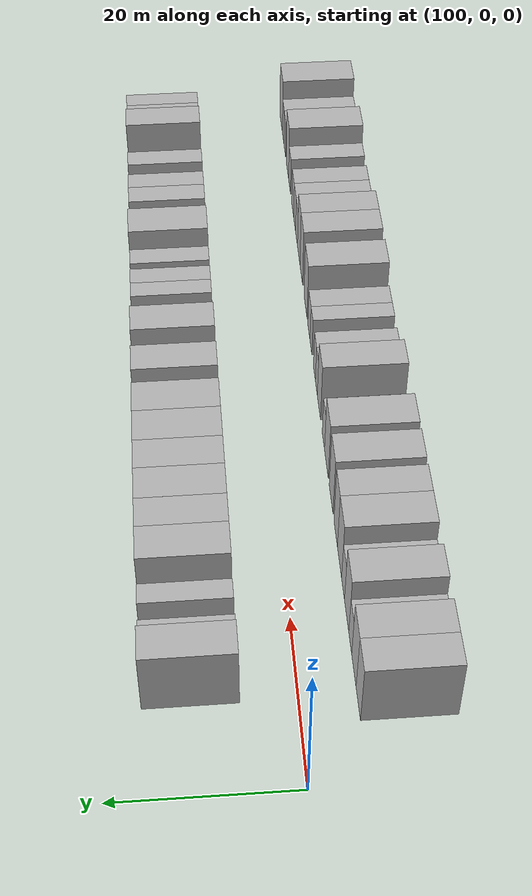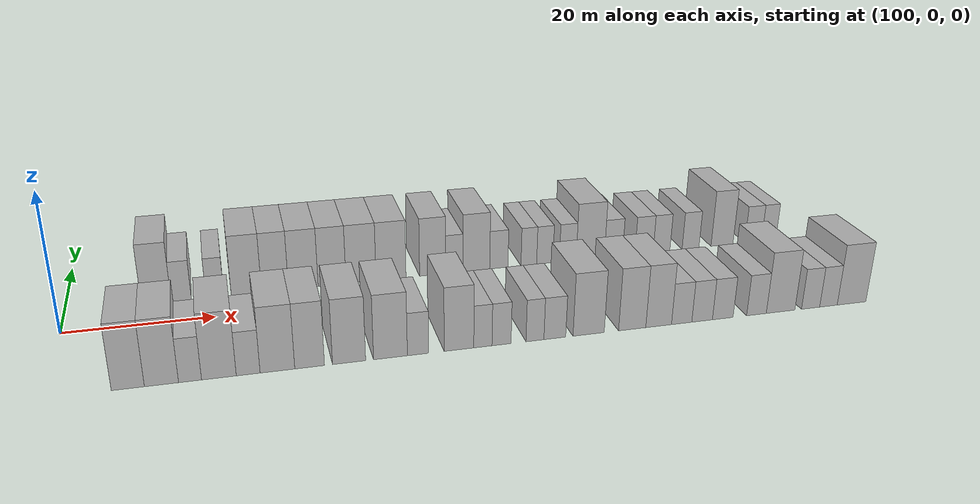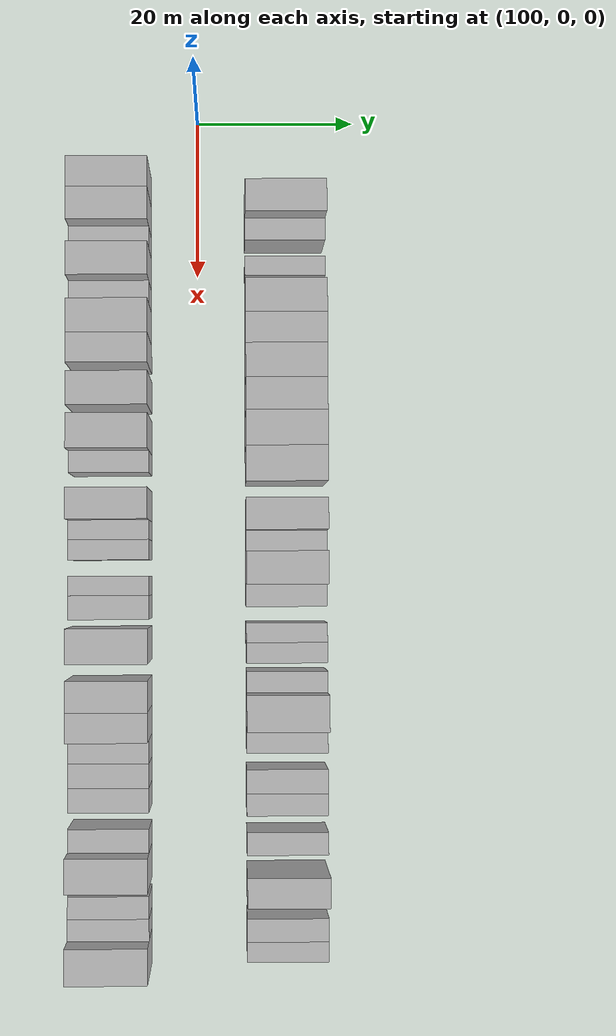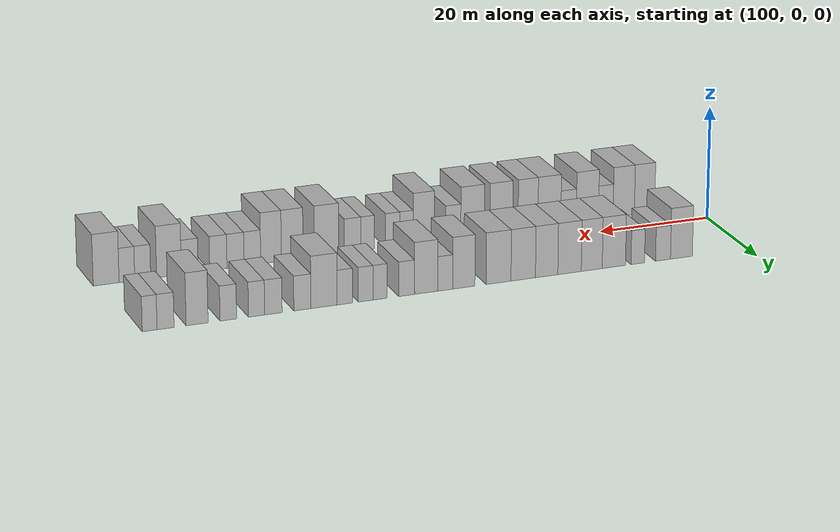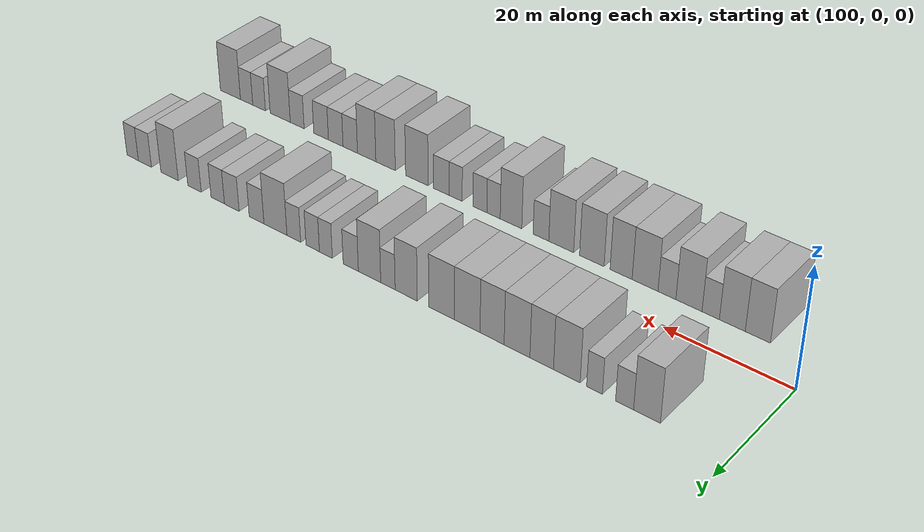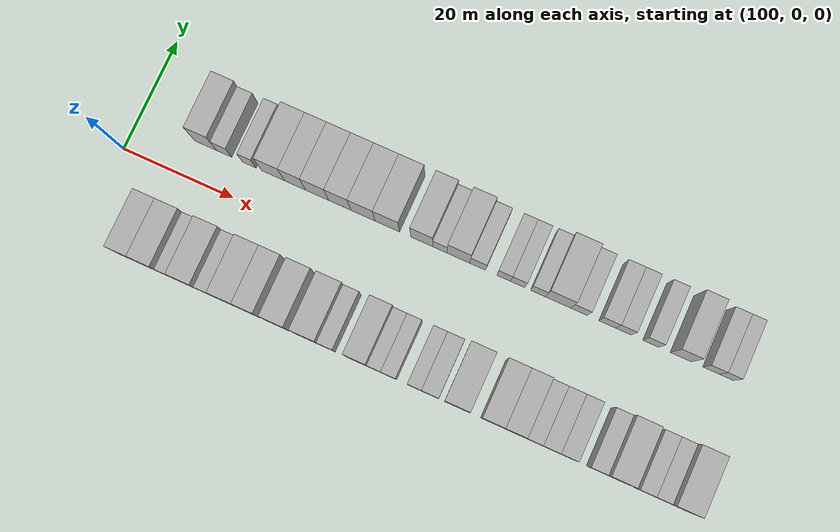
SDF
<sdf version="1.6">
 <world name="default">
  <model name="building_27">
   <static>1</static>
   <pose>112.1227 11.0000 0 0.000000 0.000000 1.570796</pose>
   <link name="link">
    <pose>0 0 4.50 0 0 0</pose>
    <collision name="collision"><geometry><box><size>10.0000 3.9997 9.0000</size></box></geometry></collision>
    <visual name="visual">
     <cast_shadows>0</cast_shadows>
     <geometry><box><size>10.0000 3.9997 9.0000</size></box></geometry>
     <material>
      <script>
       <uri>model://HANNAS_wall/materials/scripts</uri>
       <uri>model://HANNAS_wall/materials/textures</uri>
       <name>vrc/HANNAS_wall</name>
      </script>
     </material>
    </visual>
   </link>
  </model>
  <model name="building_28">
   <static>1</static>
   <pose>115.4858 11.0000 0 0.000000 0.000000 1.570796</pose>
   <link name="link">
    <pose>0 0 3.00 0 0 0</pose>
    <collision name="collision"><geometry><box><size>10.0000 2.7263 6.0000</size></box></geometry></collision>
    <visual name="visual">
     <cast_shadows>0</cast_shadows>
     <geometry><box><size>10.0000 2.7263 6.0000</size></box></geometry>
     <material>
      <script>
       <uri>model://HANNAS_wall/materials/scripts</uri>
       <uri>model://HANNAS_wall/materials/textures</uri>
       <name>vrc/HANNAS_wall</name>
      </script>
     </material>
    </visual>
   </link>
  </model>
  <model name="building_29">
   <static>1</static>
   <pose>120.0721 11.0000 0 0.000000 0.000000 1.570796</pose>
   <link name="link">
    <pose>0 0 3.00 0 0 0</pose>
    <collision name="collision"><geometry><box><size>10.0000 2.4463 6.0000</size></box></geometry></collision>
    <visual name="visual">
     <cast_shadows>0</cast_shadows>
     <geometry><box><size>10.0000 2.4463 6.0000</size></box></geometry>
     <material>
      <script>
       <uri>model://HANNAS_wall/materials/scripts</uri>
       <uri>model://HANNAS_wall/materials/textures</uri>
       <name>vrc/HANNAS_wall</name>
      </script>
     </material>
    </visual>
   </link>
  </model>
  <model name="building_30">
   <static>1</static>
   <pose>124.3929 11.0000 0 0.000000 0.000000 1.570796</pose>
   <link name="link">
    <pose>0 0 4.50 0 0 0</pose>
    <collision name="collision"><geometry><box><size>10.0000 4.1953 9.0000</size></box></geometry></collision>
    <visual name="visual">
     <cast_shadows>0</cast_shadows>
     <geometry><box><size>10.0000 4.1953 9.0000</size></box></geometry>
     <material>
      <script>
       <uri>model://HANNAS_wall/materials/scripts</uri>
       <uri>model://HANNAS_wall/materials/textures</uri>
       <name>vrc/HANNAS_wall</name>
      </script>
     </material>
    </visual>
   </link>
  </model>
  <model name="building_31">
   <static>1</static>
   <pose>128.3770 11.0000 0 0.000000 0.000000 1.570796</pose>
   <link name="link">
    <pose>0 0 4.50 0 0 0</pose>
    <collision name="collision"><geometry><box><size>10.0000 3.7729 9.0000</size></box></geometry></collision>
    <visual name="visual">
     <cast_shadows>0</cast_shadows>
     <geometry><box><size>10.0000 3.7729 9.0000</size></box></geometry>
     <material>
      <script>
       <uri>model://HANNAS_wall/materials/scripts</uri>
       <uri>model://HANNAS_wall/materials/textures</uri>
       <name>vrc/HANNAS_wall</name>
      </script>
     </material>
    </visual>
   </link>
  </model>
  <model name="building_32">
   <static>1</static>
   <pose>132.3596 11.0000 0 0.000000 0.000000 1.570796</pose>
   <link name="link">
    <pose>0 0 4.50 0 0 0</pose>
    <collision name="collision"><geometry><box><size>10.0000 4.1923 9.0000</size></box></geometry></collision>
    <visual name="visual">
     <cast_shadows>0</cast_shadows>
     <geometry><box><size>10.0000 4.1923 9.0000</size></box></geometry>
     <material>
      <script>
       <uri>model://HANNAS_wall/materials/scripts</uri>
       <uri>model://HANNAS_wall/materials/textures</uri>
       <name>vrc/HANNAS_wall</name>
      </script>
     </material>
    </visual>
   </link>
  </model>
  <model name="building_33">
   <static>1</static>
   <pose>136.4485 11.0000 0 0.000000 0.000000 1.570796</pose>
   <link name="link">
    <pose>0 0 4.50 0 0 0</pose>
    <collision name="collision"><geometry><box><size>10.0000 3.9856 9.0000</size></box></geometry></collision>
    <visual name="visual">
     <cast_shadows>0</cast_shadows>
     <geometry><box><size>10.0000 3.9856 9.0000</size></box></geometry>
     <material>
      <script>
       <uri>model://HANNAS_wall/materials/scripts</uri>
       <uri>model://HANNAS_wall/materials/textures</uri>
       <name>vrc/HANNAS_wall</name>
      </script>
     </material>
    </visual>
   </link>
  </model>
  <model name="building_34">
   <static>1</static>
   <pose>140.6150 11.0000 0 0.000000 0.000000 1.570796</pose>
   <link name="link">
    <pose>0 0 4.50 0 0 0</pose>
    <collision name="collision"><geometry><box><size>10.0000 4.3473 9.0000</size></box></geometry></collision>
    <visual name="visual">
     <cast_shadows>0</cast_shadows>
     <geometry><box><size>10.0000 4.3473 9.0000</size></box></geometry>
     <material>
      <script>
       <uri>model://HANNAS_wall/materials/scripts</uri>
       <uri>model://HANNAS_wall/materials/textures</uri>
       <name>vrc/HANNAS_wall</name>
      </script>
     </material>
    </visual>
   </link>
  </model>
  <model name="building_35">
   <static>1</static>
   <pose>144.9745 11.0000 0 0.000000 0.000000 1.570796</pose>
   <link name="link">
    <pose>0 0 4.50 0 0 0</pose>
    <collision name="collision"><geometry><box><size>10.0000 4.3716 9.0000</size></box></geometry></collision>
    <visual name="visual">
     <cast_shadows>0</cast_shadows>
     <geometry><box><size>10.0000 4.3716 9.0000</size></box></geometry>
     <material>
      <script>
       <uri>model://HANNAS_wall/materials/scripts</uri>
       <uri>model://HANNAS_wall/materials/textures</uri>
       <name>vrc/HANNAS_wall</name>
      </script>
     </material>
    </visual>
   </link>
  </model>
  <model name="building_36">
   <static>1</static>
   <pose>151.1063 11.0000 0 0.000000 0.000000 1.570796</pose>
   <link name="link">
    <pose>0 0 4.50 0 0 0</pose>
    <collision name="collision"><geometry><box><size>10.0000 3.8922 9.0000</size></box></geometry></collision>
    <visual name="visual">
     <cast_shadows>0</cast_shadows>
     <geometry><box><size>10.0000 3.8922 9.0000</size></box></geometry>
     <material>
      <script>
       <uri>model://HANNAS_wall/materials/scripts</uri>
       <uri>model://HANNAS_wall/materials/textures</uri>
       <name>vrc/HANNAS_wall</name>
      </script>
     </material>
    </visual>
   </link>
  </model>
  <model name="building_37">
   <static>1</static>
   <pose>154.3413 11.0000 0 0.000000 0.000000 1.570796</pose>
   <link name="link">
    <pose>0 0 3.00 0 0 0</pose>
    <collision name="collision"><geometry><box><size>10.0000 2.5777 6.0000</size></box></geometry></collision>
    <visual name="visual">
     <cast_shadows>0</cast_shadows>
     <geometry><box><size>10.0000 2.5777 6.0000</size></box></geometry>
     <material>
      <script>
       <uri>model://HANNAS_wall/materials/scripts</uri>
       <uri>model://HANNAS_wall/materials/textures</uri>
       <name>vrc/HANNAS_wall</name>
      </script>
     </material>
    </visual>
   </link>
  </model>
  <model name="building_38">
   <static>1</static>
   <pose>157.6521 11.0000 0 0.000000 0.000000 1.570796</pose>
   <link name="link">
    <pose>0 0 4.50 0 0 0</pose>
    <collision name="collision"><geometry><box><size>10.0000 4.0439 9.0000</size></box></geometry></collision>
    <visual name="visual">
     <cast_shadows>0</cast_shadows>
     <geometry><box><size>10.0000 4.0439 9.0000</size></box></geometry>
     <material>
      <script>
       <uri>model://HANNAS_wall/materials/scripts</uri>
       <uri>model://HANNAS_wall/materials/textures</uri>
       <name>vrc/HANNAS_wall</name>
      </script>
     </material>
    </visual>
   </link>
  </model>
  <model name="building_39">
   <static>1</static>
   <pose>161.0663 11.0000 0 0.000000 0.000000 1.570796</pose>
   <link name="link">
    <pose>0 0 3.00 0 0 0</pose>
    <collision name="collision"><geometry><box><size>10.0000 2.7846 6.0000</size></box></geometry></collision>
    <visual name="visual">
     <cast_shadows>0</cast_shadows>
     <geometry><box><size>10.0000 2.7846 6.0000</size></box></geometry>
     <material>
      <script>
       <uri>model://HANNAS_wall/materials/scripts</uri>
       <uri>model://HANNAS_wall/materials/textures</uri>
       <name>vrc/HANNAS_wall</name>
      </script>
     </material>
    </visual>
   </link>
  </model>
  <model name="building_40">
   <static>1</static>
   <pose>165.6680 11.0000 0 0.000000 0.000000 1.570796</pose>
   <link name="link">
    <pose>0 0 3.00 0 0 0</pose>
    <collision name="collision"><geometry><box><size>10.0000 2.4186 6.0000</size></box></geometry></collision>
    <visual name="visual">
     <cast_shadows>0</cast_shadows>
     <geometry><box><size>10.0000 2.4186 6.0000</size></box></geometry>
     <material>
      <script>
       <uri>model://HANNAS_wall/materials/scripts</uri>
       <uri>model://HANNAS_wall/materials/textures</uri>
       <name>vrc/HANNAS_wall</name>
      </script>
     </material>
    </visual>
   </link>
  </model>
  <model name="building_41">
   <static>1</static>
   <pose>168.1445 11.0000 0 0.000000 0.000000 1.570796</pose>
   <link name="link">
    <pose>0 0 3.00 0 0 0</pose>
    <collision name="collision"><geometry><box><size>10.0000 2.5344 6.0000</size></box></geometry></collision>
    <visual name="visual">
     <cast_shadows>0</cast_shadows>
     <geometry><box><size>10.0000 2.5344 6.0000</size></box></geometry>
     <material>
      <script>
       <uri>model://HANNAS_wall/materials/scripts</uri>
       <uri>model://HANNAS_wall/materials/textures</uri>
       <name>vrc/HANNAS_wall</name>
      </script>
     </material>
    </visual>
   </link>
  </model>
  <model name="building_42">
   <static>1</static>
   <pose>171.7299 11.0000 0 0.000000 0.000000 1.570796</pose>
   <link name="link">
    <pose>0 0 3.00 0 0 0</pose>
    <collision name="collision"><geometry><box><size>10.0000 2.6363 6.0000</size></box></geometry></collision>
    <visual name="visual">
     <cast_shadows>0</cast_shadows>
     <geometry><box><size>10.0000 2.6363 6.0000</size></box></geometry>
     <material>
      <script>
       <uri>model://HANNAS_wall/materials/scripts</uri>
       <uri>model://HANNAS_wall/materials/textures</uri>
       <name>vrc/HANNAS_wall</name>
      </script>
     </material>
    </visual>
   </link>
  </model>
  <model name="building_43">
   <static>1</static>
   <pose>175.2818 11.0000 0 0.000000 0.000000 1.570796</pose>
   <link name="link">
    <pose>0 0 4.50 0 0 0</pose>
    <collision name="collision"><geometry><box><size>10.0000 4.4676 9.0000</size></box></geometry></collision>
    <visual name="visual">
     <cast_shadows>0</cast_shadows>
     <geometry><box><size>10.0000 4.4676 9.0000</size></box></geometry>
     <material>
      <script>
       <uri>model://HANNAS_wall/materials/scripts</uri>
       <uri>model://HANNAS_wall/materials/textures</uri>
       <name>vrc/HANNAS_wall</name>
      </script>
     </material>
    </visual>
   </link>
  </model>
  <model name="building_44">
   <static>1</static>
   <pose>178.9684 11.0000 0 0.000000 0.000000 1.570796</pose>
   <link name="link">
    <pose>0 0 3.00 0 0 0</pose>
    <collision name="collision"><geometry><box><size>10.0000 2.9055 6.0000</size></box></geometry></collision>
    <visual name="visual">
     <cast_shadows>0</cast_shadows>
     <geometry><box><size>10.0000 2.9055 6.0000</size></box></geometry>
     <material>
      <script>
       <uri>model://HANNAS_wall/materials/scripts</uri>
       <uri>model://HANNAS_wall/materials/textures</uri>
       <name>vrc/HANNAS_wall</name>
      </script>
     </material>
    </visual>
   </link>
  </model>
  <model name="building_45">
   <static>1</static>
   <pose>183.8942 11.0000 0 0.000000 0.000000 1.570796</pose>
   <link name="link">
    <pose>0 0 3.00 0 0 0</pose>
    <collision name="collision"><geometry><box><size>10.0000 2.9461 6.0000</size></box></geometry></collision>
    <visual name="visual">
     <cast_shadows>0</cast_shadows>
     <geometry><box><size>10.0000 2.9461 6.0000</size></box></geometry>
     <material>
      <script>
       <uri>model://HANNAS_wall/materials/scripts</uri>
       <uri>model://HANNAS_wall/materials/textures</uri>
       <name>vrc/HANNAS_wall</name>
      </script>
     </material>
    </visual>
   </link>
  </model>
  <model name="building_46">
   <static>1</static>
   <pose>186.7300 11.0000 0 0.000000 0.000000 1.570796</pose>
   <link name="link">
    <pose>0 0 3.00 0 0 0</pose>
    <collision name="collision"><geometry><box><size>10.0000 2.7256 6.0000</size></box></geometry></collision>
    <visual name="visual">
     <cast_shadows>0</cast_shadows>
     <geometry><box><size>10.0000 2.7256 6.0000</size></box></geometry>
     <material>
      <script>
       <uri>model://HANNAS_wall/materials/scripts</uri>
       <uri>model://HANNAS_wall/materials/textures</uri>
       <name>vrc/HANNAS_wall</name>
      </script>
     </material>
    </visual>
   </link>
  </model>
  <model name="building_47">
   <static>1</static>
   <pose>191.4813 11.0000 0 0.000000 0.000000 1.570796</pose>
   <link name="link">
    <pose>0 0 3.00 0 0 0</pose>
    <collision name="collision"><geometry><box><size>10.0000 2.7770 6.0000</size></box></geometry></collision>
    <visual name="visual">
     <cast_shadows>0</cast_shadows>
     <geometry><box><size>10.0000 2.7770 6.0000</size></box></geometry>
     <material>
      <script>
       <uri>model://HANNAS_wall/materials/scripts</uri>
       <uri>model://HANNAS_wall/materials/textures</uri>
       <name>vrc/HANNAS_wall</name>
      </script>
     </material>
    </visual>
   </link>
  </model>
  <model name="building_48">
   <static>1</static>
   <pose>196.7020 11.0000 0 0.000000 0.000000 1.570796</pose>
   <link name="link">
    <pose>0 0 4.50 0 0 0</pose>
    <collision name="collision"><geometry><box><size>10.0000 3.6644 9.0000</size></box></geometry></collision>
    <visual name="visual">
     <cast_shadows>0</cast_shadows>
     <geometry><box><size>10.0000 3.6644 9.0000</size></box></geometry>
     <material>
      <script>
       <uri>model://HANNAS_wall/materials/scripts</uri>
       <uri>model://HANNAS_wall/materials/textures</uri>
       <name>vrc/HANNAS_wall</name>
      </script>
     </material>
    </visual>
   </link>
  </model>
  <model name="building_49">
   <static>1</static>
   <pose>201.9401 11.0000 0 0.000000 0.000000 1.570796</pose>
   <link name="link">
    <pose>0 0 3.00 0 0 0</pose>
    <collision name="collision"><geometry><box><size>10.0000 2.8118 6.0000</size></box></geometry></collision>
    <visual name="visual">
     <cast_shadows>0</cast_shadows>
     <geometry><box><size>10.0000 2.8118 6.0000</size></box></geometry>
     <material>
      <script>
       <uri>model://HANNAS_wall/materials/scripts</uri>
       <uri>model://HANNAS_wall/materials/textures</uri>
       <name>vrc/HANNAS_wall</name>
      </script>
     </material>
    </visual>
   </link>
  </model>
  <model name="building_50">
   <static>1</static>
   <pose>204.5741 11.0000 0 0.000000 0.000000 1.570796</pose>
   <link name="link">
    <pose>0 0 3.00 0 0 0</pose>
    <collision name="collision"><geometry><box><size>10.0000 2.4562 6.0000</size></box></geometry></collision>
    <visual name="visual">
     <cast_shadows>0</cast_shadows>
     <geometry><box><size>10.0000 2.4562 6.0000</size></box></geometry>
     <material>
      <script>
       <uri>model://HANNAS_wall/materials/scripts</uri>
       <uri>model://HANNAS_wall/materials/textures</uri>
       <name>vrc/HANNAS_wall</name>
      </script>
     </material>
    </visual>
   </link>
  </model>
  <model name="building_74">
   <static>1</static>
   <pose>109.1140 -11.0000 0 0.000000 0.000000 1.570796</pose>
   <link name="link">
    <pose>0 0 4.50 0 0 0</pose>
    <collision name="collision"><geometry><box><size>10.0000 3.8240 9.0000</size></box></geometry></collision>
    <visual name="visual">
     <cast_shadows>0</cast_shadows>
     <geometry><box><size>10.0000 3.8240 9.0000</size></box></geometry>
     <material>
      <script>
       <uri>model://HANNAS_wall/materials/scripts</uri>
       <uri>model://HANNAS_wall/materials/textures</uri>
       <name>vrc/HANNAS_wall</name>
      </script>
     </material>
    </visual>
   </link>
  </model>
  <model name="building_75">
   <static>1</static>
   <pose>113.0183 -11.0000 0 0.000000 0.000000 1.570796</pose>
   <link name="link">
    <pose>0 0 4.50 0 0 0</pose>
    <collision name="collision"><geometry><box><size>10.0000 3.9845 9.0000</size></box></geometry></collision>
    <visual name="visual">
     <cast_shadows>0</cast_shadows>
     <geometry><box><size>10.0000 3.9845 9.0000</size></box></geometry>
     <material>
      <script>
       <uri>model://HANNAS_wall/materials/scripts</uri>
       <uri>model://HANNAS_wall/materials/textures</uri>
       <name>vrc/HANNAS_wall</name>
      </script>
     </material>
    </visual>
   </link>
  </model>
  <model name="building_76">
   <static>1</static>
   <pose>116.3679 -11.0000 0 0.000000 0.000000 1.570796</pose>
   <link name="link">
    <pose>0 0 3.00 0 0 0</pose>
    <collision name="collision"><geometry><box><size>10.0000 2.7147 6.0000</size></box></geometry></collision>
    <visual name="visual">
     <cast_shadows>0</cast_shadows>
     <geometry><box><size>10.0000 2.7147 6.0000</size></box></geometry>
     <material>
      <script>
       <uri>model://HANNAS_wall/materials/scripts</uri>
       <uri>model://HANNAS_wall/materials/textures</uri>
       <name>vrc/HANNAS_wall</name>
      </script>
     </material>
    </visual>
   </link>
  </model>
  <model name="building_77">
   <static>1</static>
   <pose>119.7959 -11.0000 0 0.000000 0.000000 1.570796</pose>
   <link name="link">
    <pose>0 0 4.50 0 0 0</pose>
    <collision name="collision"><geometry><box><size>10.0000 4.1414 9.0000</size></box></geometry></collision>
    <visual name="visual">
     <cast_shadows>0</cast_shadows>
     <geometry><box><size>10.0000 4.1414 9.0000</size></box></geometry>
     <material>
      <script>
       <uri>model://HANNAS_wall/materials/scripts</uri>
       <uri>model://HANNAS_wall/materials/textures</uri>
       <name>vrc/HANNAS_wall</name>
      </script>
     </material>
    </visual>
   </link>
  </model>
  <model name="building_78">
   <static>1</static>
   <pose>123.3023 -11.0000 0 0.000000 0.000000 1.570796</pose>
   <link name="link">
    <pose>0 0 3.00 0 0 0</pose>
    <collision name="collision"><geometry><box><size>10.0000 2.8714 6.0000</size></box></geometry></collision>
    <visual name="visual">
     <cast_shadows>0</cast_shadows>
     <geometry><box><size>10.0000 2.8714 6.0000</size></box></geometry>
     <material>
      <script>
       <uri>model://HANNAS_wall/materials/scripts</uri>
       <uri>model://HANNAS_wall/materials/textures</uri>
       <name>vrc/HANNAS_wall</name>
      </script>
     </material>
    </visual>
   </link>
  </model>
  <model name="building_79">
   <static>1</static>
   <pose>126.8511 -11.0000 0 0.000000 0.000000 1.570796</pose>
   <link name="link">
    <pose>0 0 4.50 0 0 0</pose>
    <collision name="collision"><geometry><box><size>10.0000 4.2261 9.0000</size></box></geometry></collision>
    <visual name="visual">
     <cast_shadows>0</cast_shadows>
     <geometry><box><size>10.0000 4.2261 9.0000</size></box></geometry>
     <material>
      <script>
       <uri>model://HANNAS_wall/materials/scripts</uri>
       <uri>model://HANNAS_wall/materials/textures</uri>
       <name>vrc/HANNAS_wall</name>
      </script>
     </material>
    </visual>
   </link>
  </model>
  <model name="building_80">
   <static>1</static>
   <pose>130.7978 -11.0000 0 0.000000 0.000000 1.570796</pose>
   <link name="link">
    <pose>0 0 4.50 0 0 0</pose>
    <collision name="collision"><geometry><box><size>10.0000 3.6673 9.0000</size></box></geometry></collision>
    <visual name="visual">
     <cast_shadows>0</cast_shadows>
     <geometry><box><size>10.0000 3.6673 9.0000</size></box></geometry>
     <material>
      <script>
       <uri>model://HANNAS_wall/materials/scripts</uri>
       <uri>model://HANNAS_wall/materials/textures</uri>
       <name>vrc/HANNAS_wall</name>
      </script>
     </material>
    </visual>
   </link>
  </model>
  <model name="building_81">
   <static>1</static>
   <pose>135.7059 -11.0000 0 0.000000 0.000000 1.570796</pose>
   <link name="link">
    <pose>0 0 4.50 0 0 0</pose>
    <collision name="collision"><geometry><box><size>10.0000 4.1490 9.0000</size></box></geometry></collision>
    <visual name="visual">
     <cast_shadows>0</cast_shadows>
     <geometry><box><size>10.0000 4.1490 9.0000</size></box></geometry>
     <material>
      <script>
       <uri>model://HANNAS_wall/materials/scripts</uri>
       <uri>model://HANNAS_wall/materials/textures</uri>
       <name>vrc/HANNAS_wall</name>
      </script>
     </material>
    </visual>
   </link>
  </model>
  <model name="building_82">
   <static>1</static>
   <pose>140.9333 -11.0000 0 0.000000 0.000000 1.570796</pose>
   <link name="link">
    <pose>0 0 4.50 0 0 0</pose>
    <collision name="collision"><geometry><box><size>10.0000 4.3058 9.0000</size></box></geometry></collision>
    <visual name="visual">
     <cast_shadows>0</cast_shadows>
     <geometry><box><size>10.0000 4.3058 9.0000</size></box></geometry>
     <material>
      <script>
       <uri>model://HANNAS_wall/materials/scripts</uri>
       <uri>model://HANNAS_wall/materials/textures</uri>
       <name>vrc/HANNAS_wall</name>
      </script>
     </material>
    </visual>
   </link>
  </model>
  <model name="building_83">
   <static>1</static>
   <pose>144.4579 -11.0000 0 0.000000 0.000000 1.570796</pose>
   <link name="link">
    <pose>0 0 3.00 0 0 0</pose>
    <collision name="collision"><geometry><box><size>10.0000 2.7432 6.0000</size></box></geometry></collision>
    <visual name="visual">
     <cast_shadows>0</cast_shadows>
     <geometry><box><size>10.0000 2.7432 6.0000</size></box></geometry>
     <material>
      <script>
       <uri>model://HANNAS_wall/materials/scripts</uri>
       <uri>model://HANNAS_wall/materials/textures</uri>
       <name>vrc/HANNAS_wall</name>
      </script>
     </material>
    </visual>
   </link>
  </model>
  <model name="building_84">
   <static>1</static>
   <pose>149.7648 -11.0000 0 0.000000 0.000000 1.570796</pose>
   <link name="link">
    <pose>0 0 4.50 0 0 0</pose>
    <collision name="collision"><geometry><box><size>10.0000 3.8705 9.0000</size></box></geometry></collision>
    <visual name="visual">
     <cast_shadows>0</cast_shadows>
     <geometry><box><size>10.0000 3.8705 9.0000</size></box></geometry>
     <material>
      <script>
       <uri>model://HANNAS_wall/materials/scripts</uri>
       <uri>model://HANNAS_wall/materials/textures</uri>
       <name>vrc/HANNAS_wall</name>
      </script>
     </material>
    </visual>
   </link>
  </model>
  <model name="building_85">
   <static>1</static>
   <pose>152.9044 -11.0000 0 0.000000 0.000000 1.570796</pose>
   <link name="link">
    <pose>0 0 3.00 0 0 0</pose>
    <collision name="collision"><geometry><box><size>10.0000 2.4087 6.0000</size></box></geometry></collision>
    <visual name="visual">
     <cast_shadows>0</cast_shadows>
     <geometry><box><size>10.0000 2.4087 6.0000</size></box></geometry>
     <material>
      <script>
       <uri>model://HANNAS_wall/materials/scripts</uri>
       <uri>model://HANNAS_wall/materials/textures</uri>
       <name>vrc/HANNAS_wall</name>
      </script>
     </material>
    </visual>
   </link>
  </model>
  <model name="building_86">
   <static>1</static>
   <pose>155.3749 -11.0000 0 0.000000 0.000000 1.570796</pose>
   <link name="link">
    <pose>0 0 3.00 0 0 0</pose>
    <collision name="collision"><geometry><box><size>10.0000 2.5324 6.0000</size></box></geometry></collision>
    <visual name="visual">
     <cast_shadows>0</cast_shadows>
     <geometry><box><size>10.0000 2.5324 6.0000</size></box></geometry>
     <material>
      <script>
       <uri>model://HANNAS_wall/materials/scripts</uri>
       <uri>model://HANNAS_wall/materials/textures</uri>
       <name>vrc/HANNAS_wall</name>
      </script>
     </material>
    </visual>
   </link>
  </model>
  <model name="building_87">
   <static>1</static>
   <pose>159.8494 -11.0000 0 0.000000 0.000000 1.570796</pose>
   <link name="link">
    <pose>0 0 3.00 0 0 0</pose>
    <collision name="collision"><geometry><box><size>10.0000 2.4166 6.0000</size></box></geometry></collision>
    <visual name="visual">
     <cast_shadows>0</cast_shadows>
     <geometry><box><size>10.0000 2.4166 6.0000</size></box></geometry>
     <material>
      <script>
       <uri>model://HANNAS_wall/materials/scripts</uri>
       <uri>model://HANNAS_wall/materials/textures</uri>
       <name>vrc/HANNAS_wall</name>
      </script>
     </material>
    </visual>
   </link>
  </model>
  <model name="building_88">
   <static>1</static>
   <pose>162.5369 -11.0000 0 0.000000 0.000000 1.570796</pose>
   <link name="link">
    <pose>0 0 3.00 0 0 0</pose>
    <collision name="collision"><geometry><box><size>10.0000 2.9583 6.0000</size></box></geometry></collision>
    <visual name="visual">
     <cast_shadows>0</cast_shadows>
     <geometry><box><size>10.0000 2.9583 6.0000</size></box></geometry>
     <material>
      <script>
       <uri>model://HANNAS_wall/materials/scripts</uri>
       <uri>model://HANNAS_wall/materials/textures</uri>
       <name>vrc/HANNAS_wall</name>
      </script>
     </material>
    </visual>
   </link>
  </model>
  <model name="building_89">
   <static>1</static>
   <pose>167.1650 -11.0000 0 0.000000 0.000000 1.570796</pose>
   <link name="link">
    <pose>0 0 4.50 0 0 0</pose>
    <collision name="collision"><geometry><box><size>10.0000 4.2980 9.0000</size></box></geometry></collision>
    <visual name="visual">
     <cast_shadows>0</cast_shadows>
     <geometry><box><size>10.0000 4.2980 9.0000</size></box></geometry>
     <material>
      <script>
       <uri>model://HANNAS_wall/materials/scripts</uri>
       <uri>model://HANNAS_wall/materials/textures</uri>
       <name>vrc/HANNAS_wall</name>
      </script>
     </material>
    </visual>
   </link>
  </model>
  <model name="building_90">
   <static>1</static>
   <pose>173.2206 -11.0000 0 0.000000 0.000000 1.570796</pose>
   <link name="link">
    <pose>0 0 4.50 0 0 0</pose>
    <collision name="collision"><geometry><box><size>10.0000 3.8132 9.0000</size></box></geometry></collision>
    <visual name="visual">
     <cast_shadows>0</cast_shadows>
     <geometry><box><size>10.0000 3.8132 9.0000</size></box></geometry>
     <material>
      <script>
       <uri>model://HANNAS_wall/materials/scripts</uri>
       <uri>model://HANNAS_wall/materials/textures</uri>
       <name>vrc/HANNAS_wall</name>
      </script>
     </material>
    </visual>
   </link>
  </model>
  <model name="building_91">
   <static>1</static>
   <pose>176.9482 -11.0000 0 0.000000 0.000000 1.570796</pose>
   <link name="link">
    <pose>0 0 4.50 0 0 0</pose>
    <collision name="collision"><geometry><box><size>10.0000 3.6418 9.0000</size></box></geometry></collision>
    <visual name="visual">
     <cast_shadows>0</cast_shadows>
     <geometry><box><size>10.0000 3.6418 9.0000</size></box></geometry>
     <material>
      <script>
       <uri>model://HANNAS_wall/materials/scripts</uri>
       <uri>model://HANNAS_wall/materials/textures</uri>
       <name>vrc/HANNAS_wall</name>
      </script>
     </material>
    </visual>
   </link>
  </model>
  <model name="building_92">
   <static>1</static>
   <pose>180.2183 -11.0000 0 0.000000 0.000000 1.570796</pose>
   <link name="link">
    <pose>0 0 3.00 0 0 0</pose>
    <collision name="collision"><geometry><box><size>10.0000 2.8985 6.0000</size></box></geometry></collision>
    <visual name="visual">
     <cast_shadows>0</cast_shadows>
     <geometry><box><size>10.0000 2.8985 6.0000</size></box></geometry>
     <material>
      <script>
       <uri>model://HANNAS_wall/materials/scripts</uri>
       <uri>model://HANNAS_wall/materials/textures</uri>
       <name>vrc/HANNAS_wall</name>
      </script>
     </material>
    </visual>
   </link>
  </model>
  <model name="building_93">
   <static>1</static>
   <pose>183.1563 -11.0000 0 0.000000 0.000000 1.570796</pose>
   <link name="link">
    <pose>0 0 3.00 0 0 0</pose>
    <collision name="collision"><geometry><box><size>10.0000 2.9775 6.0000</size></box></geometry></collision>
    <visual name="visual">
     <cast_shadows>0</cast_shadows>
     <geometry><box><size>10.0000 2.9775 6.0000</size></box></geometry>
     <material>
      <script>
       <uri>model://HANNAS_wall/materials/scripts</uri>
       <uri>model://HANNAS_wall/materials/textures</uri>
       <name>vrc/HANNAS_wall</name>
      </script>
     </material>
    </visual>
   </link>
  </model>
  <model name="building_94">
   <static>1</static>
   <pose>186.1442 -11.0000 0 0.000000 0.000000 1.570796</pose>
   <link name="link">
    <pose>0 0 3.00 0 0 0</pose>
    <collision name="collision"><geometry><box><size>10.0000 2.9982 6.0000</size></box></geometry></collision>
    <visual name="visual">
     <cast_shadows>0</cast_shadows>
     <geometry><box><size>10.0000 2.9982 6.0000</size></box></geometry>
     <material>
      <script>
       <uri>model://HANNAS_wall/materials/scripts</uri>
       <uri>model://HANNAS_wall/materials/textures</uri>
       <name>vrc/HANNAS_wall</name>
      </script>
     </material>
    </visual>
   </link>
  </model>
  <model name="building_95">
   <static>1</static>
   <pose>191.0923 -11.0000 0 0.000000 0.000000 1.570796</pose>
   <link name="link">
    <pose>0 0 3.00 0 0 0</pose>
    <collision name="collision"><geometry><box><size>10.0000 2.8981 6.0000</size></box></geometry></collision>
    <visual name="visual">
     <cast_shadows>0</cast_shadows>
     <geometry><box><size>10.0000 2.8981 6.0000</size></box></geometry>
     <material>
      <script>
       <uri>model://HANNAS_wall/materials/scripts</uri>
       <uri>model://HANNAS_wall/materials/textures</uri>
       <name>vrc/HANNAS_wall</name>
      </script>
     </material>
    </visual>
   </link>
  </model>
  <model name="building_96">
   <static>1</static>
   <pose>194.6716 -11.0000 0 0.000000 0.000000 1.570796</pose>
   <link name="link">
    <pose>0 0 4.50 0 0 0</pose>
    <collision name="collision"><geometry><box><size>10.0000 4.2605 9.0000</size></box></geometry></collision>
    <visual name="visual">
     <cast_shadows>0</cast_shadows>
     <geometry><box><size>10.0000 4.2605 9.0000</size></box></geometry>
     <material>
      <script>
       <uri>model://HANNAS_wall/materials/scripts</uri>
       <uri>model://HANNAS_wall/materials/textures</uri>
       <name>vrc/HANNAS_wall</name>
      </script>
     </material>
    </visual>
   </link>
  </model>
  <model name="building_97">
   <static>1</static>
   <pose>199.1739 -11.0000 0 0.000000 0.000000 1.570796</pose>
   <link name="link">
    <pose>0 0 3.00 0 0 0</pose>
    <collision name="collision"><geometry><box><size>10.0000 2.7441 6.0000</size></box></geometry></collision>
    <visual name="visual">
     <cast_shadows>0</cast_shadows>
     <geometry><box><size>10.0000 2.7441 6.0000</size></box></geometry>
     <material>
      <script>
       <uri>model://HANNAS_wall/materials/scripts</uri>
       <uri>model://HANNAS_wall/materials/textures</uri>
       <name>vrc/HANNAS_wall</name>
      </script>
     </material>
    </visual>
   </link>
  </model>
  <model name="building_98">
   <static>1</static>
   <pose>201.8779 -11.0000 0 0.000000 0.000000 1.570796</pose>
   <link name="link">
    <pose>0 0 3.00 0 0 0</pose>
    <collision name="collision"><geometry><box><size>10.0000 2.6640 6.0000</size></box></geometry></collision>
    <visual name="visual">
     <cast_shadows>0</cast_shadows>
     <geometry><box><size>10.0000 2.6640 6.0000</size></box></geometry>
     <material>
      <script>
       <uri>model://HANNAS_wall/materials/scripts</uri>
       <uri>model://HANNAS_wall/materials/textures</uri>
       <name>vrc/HANNAS_wall</name>
      </script>
     </material>
    </visual>
   </link>
  </model>
  <model name="building_99">
   <static>1</static>
   <pose>205.4075 -11.0000 0 0.000000 0.000000 1.570796</pose>
   <link name="link">
    <pose>0 0 4.50 0 0 0</pose>
    <collision name="collision"><geometry><box><size>10.0000 4.3953 9.0000</size></box></geometry></collision>
    <visual name="visual">
     <cast_shadows>0</cast_shadows>
     <geometry><box><size>10.0000 4.3953 9.0000</size></box></geometry>
     <material>
      <script>
       <uri>model://HANNAS_wall/materials/scripts</uri>
       <uri>model://HANNAS_wall/materials/textures</uri>
       <name>vrc/HANNAS_wall</name>
      </script>
     </material>
    </visual>
   </link>
  </model>
 </world>
</sdf>
